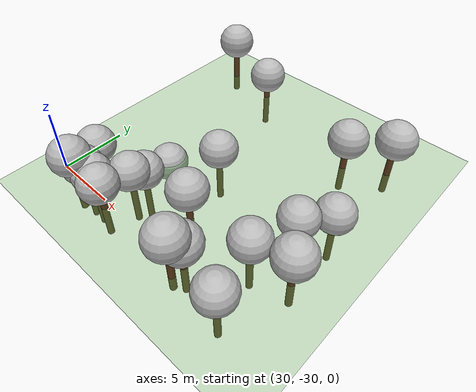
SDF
<sdf version="1.7">
 <world name="default">
  <model name="tree_simple473">
   <static>1</static>
   <link name="link">
    <pose>0 0 0.1 0 -0 0</pose>
    <collision name="collision_trunk">
     <pose>0 0 2 0 -0 0</pose>
     <geometry><cylinder><radius>0.25</radius><length>4</length></cylinder></geometry>
    </collision>
    <collision name="collision_treetop">
     <pose>0 0 5.2 0 -0 0</pose>
     <geometry><sphere><radius>1.5</radius></sphere></geometry>
    </collision>
    <visual name="trunk">
     <pose>0 0 2 0 -0 0</pose>
     <geometry><cylinder><radius>0.25</radius><length>4</length></cylinder></geometry>
     <material>
      <script>
       <uri>model://tree_simple/scripts</uri>
       <uri>model://tree_simple/materials/textures</uri>
       <name>TreeSimple/Trunk</name>
      </script>
     </material>
    </visual>
    <visual name="treetop">
     <pose>0 0 5.2 0 -0 0</pose>
     <geometry><sphere><radius>1.5</radius></sphere></geometry>
     <material>
      <script>
       <uri>model://tree_simple/scripts</uri>
       <uri>model://tree_simple/materials/textures</uri>
       <name>TreeSimple/Treetop</name>
      </script>
     </material>
    </visual>
   </link>
   <pose>35.36 -12.4568 -3.05954 0 -0 0</pose>
  </model>
  <model name="tree_simple461">
   <static>1</static>
   <link name="link">
    <pose>0 0 0.1 0 -0 0</pose>
    <collision name="collision_trunk">
     <pose>0 0 2 0 -0 0</pose>
     <geometry><cylinder><radius>0.25</radius><length>4</length></cylinder></geometry>
    </collision>
    <collision name="collision_treetop">
     <pose>0 0 5.2 0 -0 0</pose>
     <geometry><sphere><radius>1.5</radius></sphere></geometry>
    </collision>
    <visual name="trunk">
     <pose>0 0 2 0 -0 0</pose>
     <geometry><cylinder><radius>0.25</radius><length>4</length></cylinder></geometry>
     <material>
      <script>
       <uri>model://tree_simple/scripts</uri>
       <uri>model://tree_simple/materials/textures</uri>
       <name>TreeSimple/Trunk</name>
      </script>
     </material>
    </visual>
    <visual name="treetop">
     <pose>0 0 5.2 0 -0 0</pose>
     <geometry><sphere><radius>1.5</radius></sphere></geometry>
     <material>
      <script>
       <uri>model://tree_simple/scripts</uri>
       <uri>model://tree_simple/materials/textures</uri>
       <name>TreeSimple/Treetop</name>
      </script>
     </material>
    </visual>
   </link>
   <pose>48.4584 -13.8276 -1.9506 0 -0 0</pose>
  </model>
  <model name="tree_simple400">
   <static>1</static>
   <link name="link">
    <pose>0 0 0.1 0 -0 0</pose>
    <collision name="collision_trunk">
     <pose>0 0 2 0 -0 0</pose>
     <geometry><cylinder><radius>0.25</radius><length>4</length></cylinder></geometry>
    </collision>
    <collision name="collision_treetop">
     <pose>0 0 5.2 0 -0 0</pose>
     <geometry><sphere><radius>1.5</radius></sphere></geometry>
    </collision>
    <visual name="trunk">
     <pose>0 0 2 0 -0 0</pose>
     <geometry><cylinder><radius>0.25</radius><length>4</length></cylinder></geometry>
     <material>
      <script>
       <uri>model://tree_simple/scripts</uri>
       <uri>model://tree_simple/materials/textures</uri>
       <name>TreeSimple/Trunk</name>
      </script>
     </material>
    </visual>
    <visual name="treetop">
     <pose>0 0 5.2 0 -0 0</pose>
     <geometry><sphere><radius>1.5</radius></sphere></geometry>
     <material>
      <script>
       <uri>model://tree_simple/scripts</uri>
       <uri>model://tree_simple/materials/textures</uri>
       <name>TreeSimple/Treetop</name>
      </script>
     </material>
    </visual>
   </link>
   <pose>43.2652 -29.8931 -2.82808 0 -0 0</pose>
  </model>
  <model name="tree_simple390">
   <static>1</static>
   <link name="link">
    <pose>0 0 0.1 0 -0 0</pose>
    <collision name="collision_trunk">
     <pose>0 0 2 0 -0 0</pose>
     <geometry><cylinder><radius>0.25</radius><length>4</length></cylinder></geometry>
    </collision>
    <collision name="collision_treetop">
     <pose>0 0 5.2 0 -0 0</pose>
     <geometry><sphere><radius>1.5</radius></sphere></geometry>
    </collision>
    <visual name="trunk">
     <pose>0 0 2 0 -0 0</pose>
     <geometry><cylinder><radius>0.25</radius><length>4</length></cylinder></geometry>
     <material>
      <script>
       <uri>model://tree_simple/scripts</uri>
       <uri>model://tree_simple/materials/textures</uri>
       <name>TreeSimple/Trunk</name>
      </script>
     </material>
    </visual>
    <visual name="treetop">
     <pose>0 0 5.2 0 -0 0</pose>
     <geometry><sphere><radius>1.5</radius></sphere></geometry>
     <material>
      <script>
       <uri>model://tree_simple/scripts</uri>
       <uri>model://tree_simple/materials/textures</uri>
       <name>TreeSimple/Treetop</name>
      </script>
     </material>
    </visual>
   </link>
   <pose>34.828 -23.7978 -5.93333 0 -0 0</pose>
  </model>
  <model name="tree_simple379">
   <static>1</static>
   <link name="link">
    <pose>0 0 0.1 0 -0 0</pose>
    <collision name="collision_trunk">
     <pose>0 0 2 0 -0 0</pose>
     <geometry><cylinder><radius>0.25</radius><length>4</length></cylinder></geometry>
    </collision>
    <collision name="collision_treetop">
     <pose>0 0 5.2 0 -0 0</pose>
     <geometry><sphere><radius>1.5</radius></sphere></geometry>
    </collision>
    <visual name="trunk">
     <pose>0 0 2 0 -0 0</pose>
     <geometry><cylinder><radius>0.25</radius><length>4</length></cylinder></geometry>
     <material>
      <script>
       <uri>model://tree_simple/scripts</uri>
       <uri>model://tree_simple/materials/textures</uri>
       <name>TreeSimple/Trunk</name>
      </script>
     </material>
    </visual>
    <visual name="treetop">
     <pose>0 0 5.2 0 -0 0</pose>
     <geometry><sphere><radius>1.5</radius></sphere></geometry>
     <material>
      <script>
       <uri>model://tree_simple/scripts</uri>
       <uri>model://tree_simple/materials/textures</uri>
       <name>TreeSimple/Treetop</name>
      </script>
     </material>
    </visual>
   </link>
   <pose>35.6338 -27.9469 -3.44442 0 -0 0</pose>
  </model>
  <model name="tree_simple374">
   <static>1</static>
   <link name="link">
    <pose>0 0 0.1 0 -0 0</pose>
    <collision name="collision_trunk">
     <pose>0 0 2 0 -0 0</pose>
     <geometry><cylinder><radius>0.25</radius><length>4</length></cylinder></geometry>
    </collision>
    <collision name="collision_treetop">
     <pose>0 0 5.2 0 -0 0</pose>
     <geometry><sphere><radius>1.5</radius></sphere></geometry>
    </collision>
    <visual name="trunk">
     <pose>0 0 2 0 -0 0</pose>
     <geometry><cylinder><radius>0.25</radius><length>4</length></cylinder></geometry>
     <material>
      <script>
       <uri>model://tree_simple/scripts</uri>
       <uri>model://tree_simple/materials/textures</uri>
       <name>TreeSimple/Trunk</name>
      </script>
     </material>
    </visual>
    <visual name="treetop">
     <pose>0 0 5.2 0 -0 0</pose>
     <geometry><sphere><radius>1.5</radius></sphere></geometry>
     <material>
      <script>
       <uri>model://tree_simple/scripts</uri>
       <uri>model://tree_simple/materials/textures</uri>
       <name>TreeSimple/Treetop</name>
      </script>
     </material>
    </visual>
   </link>
   <pose>45.588 -15.4743 -2.4826 0 -0 0</pose>
  </model>
  <model name="tree_simple361">
   <static>1</static>
   <link name="link">
    <pose>0 0 0.1 0 -0 0</pose>
    <collision name="collision_trunk">
     <pose>0 0 2 0 -0 0</pose>
     <geometry><cylinder><radius>0.25</radius><length>4</length></cylinder></geometry>
    </collision>
    <collision name="collision_treetop">
     <pose>0 0 5.2 0 -0 0</pose>
     <geometry><sphere><radius>1.5</radius></sphere></geometry>
    </collision>
    <visual name="trunk">
     <pose>0 0 2 0 -0 0</pose>
     <geometry><cylinder><radius>0.25</radius><length>4</length></cylinder></geometry>
     <material>
      <script>
       <uri>model://tree_simple/scripts</uri>
       <uri>model://tree_simple/materials/textures</uri>
       <name>TreeSimple/Trunk</name>
      </script>
     </material>
    </visual>
    <visual name="treetop">
     <pose>0 0 5.2 0 -0 0</pose>
     <geometry><sphere><radius>1.5</radius></sphere></geometry>
     <material>
      <script>
       <uri>model://tree_simple/scripts</uri>
       <uri>model://tree_simple/materials/textures</uri>
       <name>TreeSimple/Treetop</name>
      </script>
     </material>
    </visual>
   </link>
   <pose>35.5367 -26.7239 -4.31343 0 -0 0</pose>
  </model>
  <model name="tree_simple330">
   <static>1</static>
   <link name="link">
    <pose>0 0 0.1 0 -0 0</pose>
    <collision name="collision_trunk">
     <pose>0 0 2 0 -0 0</pose>
     <geometry><cylinder><radius>0.25</radius><length>4</length></cylinder></geometry>
    </collision>
    <collision name="collision_treetop">
     <pose>0 0 5.2 0 -0 0</pose>
     <geometry><sphere><radius>1.5</radius></sphere></geometry>
    </collision>
    <visual name="trunk">
     <pose>0 0 2 0 -0 0</pose>
     <geometry><cylinder><radius>0.25</radius><length>4</length></cylinder></geometry>
     <material>
      <script>
       <uri>model://tree_simple/scripts</uri>
       <uri>model://tree_simple/materials/textures</uri>
       <name>TreeSimple/Trunk</name>
      </script>
     </material>
    </visual>
    <visual name="treetop">
     <pose>0 0 5.2 0 -0 0</pose>
     <geometry><sphere><radius>1.5</radius></sphere></geometry>
     <material>
      <script>
       <uri>model://tree_simple/scripts</uri>
       <uri>model://tree_simple/materials/textures</uri>
       <name>TreeSimple/Treetop</name>
      </script>
     </material>
    </visual>
   </link>
   <pose>46.6177 -30.3535 -3.81482 0 -0 0</pose>
  </model>
  <model name="tree_simple298">
   <static>1</static>
   <link name="link">
    <pose>0 0 0.1 0 -0 0</pose>
    <collision name="collision_trunk">
     <pose>0 0 2 0 -0 0</pose>
     <geometry><cylinder><radius>0.25</radius><length>4</length></cylinder></geometry>
    </collision>
    <collision name="collision_treetop">
     <pose>0 0 5.2 0 -0 0</pose>
     <geometry><sphere><radius>1.5</radius></sphere></geometry>
    </collision>
    <visual name="trunk">
     <pose>0 0 2 0 -0 0</pose>
     <geometry><cylinder><radius>0.25</radius><length>4</length></cylinder></geometry>
     <material>
      <script>
       <uri>model://tree_simple/scripts</uri>
       <uri>model://tree_simple/materials/textures</uri>
       <name>TreeSimple/Trunk</name>
      </script>
     </material>
    </visual>
    <visual name="treetop">
     <pose>0 0 5.2 0 -0 0</pose>
     <geometry><sphere><radius>1.5</radius></sphere></geometry>
     <material>
      <script>
       <uri>model://tree_simple/scripts</uri>
       <uri>model://tree_simple/materials/textures</uri>
       <name>TreeSimple/Treetop</name>
      </script>
     </material>
    </visual>
   </link>
   <pose>33.2902 -30.1268 -2.84391 0 -0 0</pose>
  </model>
  <model name="tree_simple278">
   <static>1</static>
   <link name="link">
    <pose>0 0 0.1 0 -0 0</pose>
    <collision name="collision_trunk">
     <pose>0 0 2 0 -0 0</pose>
     <geometry><cylinder><radius>0.25</radius><length>4</length></cylinder></geometry>
    </collision>
    <collision name="collision_treetop">
     <pose>0 0 5.2 0 -0 0</pose>
     <geometry><sphere><radius>1.5</radius></sphere></geometry>
    </collision>
    <visual name="trunk">
     <pose>0 0 2 0 -0 0</pose>
     <geometry><cylinder><radius>0.25</radius><length>4</length></cylinder></geometry>
     <material>
      <script>
       <uri>model://tree_simple/scripts</uri>
       <uri>model://tree_simple/materials/textures</uri>
       <name>TreeSimple/Trunk</name>
      </script>
     </material>
    </visual>
    <visual name="treetop">
     <pose>0 0 5.2 0 -0 0</pose>
     <geometry><sphere><radius>1.5</radius></sphere></geometry>
     <material>
      <script>
       <uri>model://tree_simple/scripts</uri>
       <uri>model://tree_simple/materials/textures</uri>
       <name>TreeSimple/Treetop</name>
      </script>
     </material>
    </visual>
   </link>
   <pose>38.4116 -21.7405 -3.76633 0 -0 0</pose>
  </model>
  <model name="tree_simple263">
   <static>1</static>
   <link name="link">
    <pose>0 0 0.1 0 -0 0</pose>
    <collision name="collision_trunk">
     <pose>0 0 2 0 -0 0</pose>
     <geometry><cylinder><radius>0.25</radius><length>4</length></cylinder></geometry>
    </collision>
    <collision name="collision_treetop">
     <pose>0 0 5.2 0 -0 0</pose>
     <geometry><sphere><radius>1.5</radius></sphere></geometry>
    </collision>
    <visual name="trunk">
     <pose>0 0 2 0 -0 0</pose>
     <geometry><cylinder><radius>0.25</radius><length>4</length></cylinder></geometry>
     <material>
      <script>
       <uri>model://tree_simple/scripts</uri>
       <uri>model://tree_simple/materials/textures</uri>
       <name>TreeSimple/Trunk</name>
      </script>
     </material>
    </visual>
    <visual name="treetop">
     <pose>0 0 5.2 0 -0 0</pose>
     <geometry><sphere><radius>1.5</radius></sphere></geometry>
     <material>
      <script>
       <uri>model://tree_simple/scripts</uri>
       <uri>model://tree_simple/materials/textures</uri>
       <name>TreeSimple/Treetop</name>
      </script>
     </material>
    </visual>
   </link>
   <pose>40.6295 -26.8946 -2.48298 0 -0 0</pose>
  </model>
  <model name="tree_simple243">
   <static>1</static>
   <link name="link">
    <pose>0 0 0.1 0 -0 0</pose>
    <collision name="collision_trunk">
     <pose>0 0 2 0 -0 0</pose>
     <geometry><cylinder><radius>0.25</radius><length>4</length></cylinder></geometry>
    </collision>
    <collision name="collision_treetop">
     <pose>0 0 5.2 0 -0 0</pose>
     <geometry><sphere><radius>1.5</radius></sphere></geometry>
    </collision>
    <visual name="trunk">
     <pose>0 0 2 0 -0 0</pose>
     <geometry><cylinder><radius>0.25</radius><length>4</length></cylinder></geometry>
     <material>
      <script>
       <uri>model://tree_simple/scripts</uri>
       <uri>model://tree_simple/materials/textures</uri>
       <name>TreeSimple/Trunk</name>
      </script>
     </material>
    </visual>
    <visual name="treetop">
     <pose>0 0 5.2 0 -0 0</pose>
     <geometry><sphere><radius>1.5</radius></sphere></geometry>
     <material>
      <script>
       <uri>model://tree_simple/scripts</uri>
       <uri>model://tree_simple/materials/textures</uri>
       <name>TreeSimple/Treetop</name>
      </script>
     </material>
    </visual>
   </link>
   <pose>48.9656 -26.1872 -2.52503 0 -0 0</pose>
  </model>
  <model name="tree_simple206">
   <static>1</static>
   <link name="link">
    <pose>0 0 0.1 0 -0 0</pose>
    <collision name="collision_trunk">
     <pose>0 0 2 0 -0 0</pose>
     <geometry><cylinder><radius>0.25</radius><length>4</length></cylinder></geometry>
    </collision>
    <collision name="collision_treetop">
     <pose>0 0 5.2 0 -0 0</pose>
     <geometry><sphere><radius>1.5</radius></sphere></geometry>
    </collision>
    <visual name="trunk">
     <pose>0 0 2 0 -0 0</pose>
     <geometry><cylinder><radius>0.25</radius><length>4</length></cylinder></geometry>
     <material>
      <script>
       <uri>model://tree_simple/scripts</uri>
       <uri>model://tree_simple/materials/textures</uri>
       <name>TreeSimple/Trunk</name>
      </script>
     </material>
    </visual>
    <visual name="treetop">
     <pose>0 0 5.2 0 -0 0</pose>
     <geometry><sphere><radius>1.5</radius></sphere></geometry>
     <material>
      <script>
       <uri>model://tree_simple/scripts</uri>
       <uri>model://tree_simple/materials/textures</uri>
       <name>TreeSimple/Treetop</name>
      </script>
     </material>
    </visual>
   </link>
   <pose>46.8541 -22.8682 -3.78557 0 -0 0</pose>
  </model>
  <model name="tree_simple185">
   <static>1</static>
   <link name="link">
    <pose>0 0 0.1 0 -0 0</pose>
    <collision name="collision_trunk">
     <pose>0 0 2 0 -0 0</pose>
     <geometry><cylinder><radius>0.25</radius><length>4</length></cylinder></geometry>
    </collision>
    <collision name="collision_treetop">
     <pose>0 0 5.2 0 -0 0</pose>
     <geometry><sphere><radius>1.5</radius></sphere></geometry>
    </collision>
    <visual name="trunk">
     <pose>0 0 2 0 -0 0</pose>
     <geometry><cylinder><radius>0.25</radius><length>4</length></cylinder></geometry>
     <material>
      <script>
       <uri>model://tree_simple/scripts</uri>
       <uri>model://tree_simple/materials/textures</uri>
       <name>TreeSimple/Trunk</name>
      </script>
     </material>
    </visual>
    <visual name="treetop">
     <pose>0 0 5.2 0 -0 0</pose>
     <geometry><sphere><radius>1.5</radius></sphere></geometry>
     <material>
      <script>
       <uri>model://tree_simple/scripts</uri>
       <uri>model://tree_simple/materials/textures</uri>
       <name>TreeSimple/Treetop</name>
      </script>
     </material>
    </visual>
   </link>
   <pose>48.1272 -20.3232 -4.57911 0 -0 0</pose>
  </model>
  <model name="tree_simple179">
   <static>1</static>
   <link name="link">
    <pose>0 0 0.1 0 -0 0</pose>
    <collision name="collision_trunk">
     <pose>0 0 2 0 -0 0</pose>
     <geometry><cylinder><radius>0.25</radius><length>4</length></cylinder></geometry>
    </collision>
    <collision name="collision_treetop">
     <pose>0 0 5.2 0 -0 0</pose>
     <geometry><sphere><radius>1.5</radius></sphere></geometry>
    </collision>
    <visual name="trunk">
     <pose>0 0 2 0 -0 0</pose>
     <geometry><cylinder><radius>0.25</radius><length>4</length></cylinder></geometry>
     <material>
      <script>
       <uri>model://tree_simple/scripts</uri>
       <uri>model://tree_simple/materials/textures</uri>
       <name>TreeSimple/Trunk</name>
      </script>
     </material>
    </visual>
    <visual name="treetop">
     <pose>0 0 5.2 0 -0 0</pose>
     <geometry><sphere><radius>1.5</radius></sphere></geometry>
     <material>
      <script>
       <uri>model://tree_simple/scripts</uri>
       <uri>model://tree_simple/materials/textures</uri>
       <name>TreeSimple/Treetop</name>
      </script>
     </material>
    </visual>
   </link>
   <pose>33.0376 -30.7286 -1.71832 0 -0 0</pose>
  </model>
  <model name="tree_simple133">
   <static>1</static>
   <link name="link">
    <pose>0 0 0.1 0 -0 0</pose>
    <collision name="collision_trunk">
     <pose>0 0 2 0 -0 0</pose>
     <geometry><cylinder><radius>0.25</radius><length>4</length></cylinder></geometry>
    </collision>
    <collision name="collision_treetop">
     <pose>0 0 5.2 0 -0 0</pose>
     <geometry><sphere><radius>1.5</radius></sphere></geometry>
    </collision>
    <visual name="trunk">
     <pose>0 0 2 0 -0 0</pose>
     <geometry><cylinder><radius>0.25</radius><length>4</length></cylinder></geometry>
     <material>
      <script>
       <uri>model://tree_simple/scripts</uri>
       <uri>model://tree_simple/materials/textures</uri>
       <name>TreeSimple/Trunk</name>
      </script>
     </material>
    </visual>
    <visual name="treetop">
     <pose>0 0 5.2 0 -0 0</pose>
     <geometry><sphere><radius>1.5</radius></sphere></geometry>
     <material>
      <script>
       <uri>model://tree_simple/scripts</uri>
       <uri>model://tree_simple/materials/textures</uri>
       <name>TreeSimple/Treetop</name>
      </script>
     </material>
    </visual>
   </link>
   <pose>34.1792 -30.0611 -3.05109 0 -0 0</pose>
  </model>
  <model name="tree_simple128">
   <static>1</static>
   <link name="link">
    <pose>0 0 0.1 0 -0 0</pose>
    <collision name="collision_trunk">
     <pose>0 0 2 0 -0 0</pose>
     <geometry><cylinder><radius>0.25</radius><length>4</length></cylinder></geometry>
    </collision>
    <collision name="collision_treetop">
     <pose>0 0 5.2 0 -0 0</pose>
     <geometry><sphere><radius>1.5</radius></sphere></geometry>
    </collision>
    <visual name="trunk">
     <pose>0 0 2 0 -0 0</pose>
     <geometry><cylinder><radius>0.25</radius><length>4</length></cylinder></geometry>
     <material>
      <script>
       <uri>model://tree_simple/scripts</uri>
       <uri>model://tree_simple/materials/textures</uri>
       <name>TreeSimple/Trunk</name>
      </script>
     </material>
    </visual>
    <visual name="treetop">
     <pose>0 0 5.2 0 -0 0</pose>
     <geometry><sphere><radius>1.5</radius></sphere></geometry>
     <material>
      <script>
       <uri>model://tree_simple/scripts</uri>
       <uri>model://tree_simple/materials/textures</uri>
       <name>TreeSimple/Treetop</name>
      </script>
     </material>
    </visual>
   </link>
   <pose>45.9202 -26.5855 -3.35013 0 -0 0</pose>
  </model>
  <model name="tree_simple63">
   <static>1</static>
   <link name="link">
    <pose>0 0 0.1 0 -0 0</pose>
    <collision name="collision_trunk">
     <pose>0 0 2 0 -0 0</pose>
     <geometry><cylinder><radius>0.25</radius><length>4</length></cylinder></geometry>
    </collision>
    <collision name="collision_treetop">
     <pose>0 0 5.2 0 -0 0</pose>
     <geometry><sphere><radius>1.5</radius></sphere></geometry>
    </collision>
    <visual name="trunk">
     <pose>0 0 2 0 -0 0</pose>
     <geometry><cylinder><radius>0.25</radius><length>4</length></cylinder></geometry>
     <material>
      <script>
       <uri>model://tree_simple/scripts</uri>
       <uri>model://tree_simple/materials/textures</uri>
       <name>TreeSimple/Trunk</name>
      </script>
     </material>
    </visual>
    <visual name="treetop">
     <pose>0 0 5.2 0 -0 0</pose>
     <geometry><sphere><radius>1.5</radius></sphere></geometry>
     <material>
      <script>
       <uri>model://tree_simple/scripts</uri>
       <uri>model://tree_simple/materials/textures</uri>
       <name>TreeSimple/Treetop</name>
      </script>
     </material>
    </visual>
   </link>
   <pose>31.0402 -11.8389 -1.6087 0 -0 0</pose>
  </model>
  <model name="tree_simple57">
   <static>1</static>
   <link name="link">
    <pose>0 0 0.1 0 -0 0</pose>
    <collision name="collision_trunk">
     <pose>0 0 2 0 -0 0</pose>
     <geometry><cylinder><radius>0.25</radius><length>4</length></cylinder></geometry>
    </collision>
    <collision name="collision_treetop">
     <pose>0 0 5.2 0 -0 0</pose>
     <geometry><sphere><radius>1.5</radius></sphere></geometry>
    </collision>
    <visual name="trunk">
     <pose>0 0 2 0 -0 0</pose>
     <geometry><cylinder><radius>0.25</radius><length>4</length></cylinder></geometry>
     <material>
      <script>
       <uri>model://tree_simple/scripts</uri>
       <uri>model://tree_simple/materials/textures</uri>
       <name>TreeSimple/Trunk</name>
      </script>
     </material>
    </visual>
    <visual name="treetop">
     <pose>0 0 5.2 0 -0 0</pose>
     <geometry><sphere><radius>1.5</radius></sphere></geometry>
     <material>
      <script>
       <uri>model://tree_simple/scripts</uri>
       <uri>model://tree_simple/materials/textures</uri>
       <name>TreeSimple/Treetop</name>
      </script>
     </material>
    </visual>
   </link>
   <pose>43.2092 -30.8439 -1.43787 0 -0 0</pose>
  </model>
  <model name="tree_simple9">
   <static>1</static>
   <link name="link">
    <pose>0 0 0.1 0 -0 0</pose>
    <collision name="collision_trunk">
     <pose>0 0 2 0 -0 0</pose>
     <geometry><cylinder><radius>0.25</radius><length>4</length></cylinder></geometry>
    </collision>
    <collision name="collision_treetop">
     <pose>0 0 5.2 0 -0 0</pose>
     <geometry><sphere><radius>1.5</radius></sphere></geometry>
    </collision>
    <visual name="trunk">
     <pose>0 0 2 0 -0 0</pose>
     <geometry><cylinder><radius>0.25</radius><length>4</length></cylinder></geometry>
     <material>
      <script>
       <uri>model://tree_simple/scripts</uri>
       <uri>model://tree_simple/materials/textures</uri>
       <name>TreeSimple/Trunk</name>
      </script>
     </material>
    </visual>
    <visual name="treetop">
     <pose>0 0 5.2 0 -0 0</pose>
     <geometry><sphere><radius>1.5</radius></sphere></geometry>
     <material>
      <script>
       <uri>model://tree_simple/scripts</uri>
       <uri>model://tree_simple/materials/textures</uri>
       <name>TreeSimple/Treetop</name>
      </script>
     </material>
    </visual>
   </link>
   <pose>31.8662 -28.0908 -3.11315 0 -0 0</pose>
  </model>
  <model name="tree_simple1">
   <static>1</static>
   <link name="link">
    <pose>0 0 0.1 0 -0 0</pose>
    <collision name="collision_trunk">
     <pose>0 0 2 0 -0 0</pose>
     <geometry><cylinder><radius>0.25</radius><length>4</length></cylinder></geometry>
    </collision>
    <collision name="collision_treetop">
     <pose>0 0 5.2 0 -0 0</pose>
     <geometry><sphere><radius>1.5</radius></sphere></geometry>
    </collision>
    <visual name="trunk">
     <pose>0 0 2 0 -0 0</pose>
     <geometry><cylinder><radius>0.25</radius><length>4</length></cylinder></geometry>
     <material>
      <script>
       <uri>model://tree_simple/scripts</uri>
       <uri>model://tree_simple/materials/textures</uri>
       <name>TreeSimple/Trunk</name>
      </script>
     </material>
    </visual>
    <visual name="treetop">
     <pose>0 0 5.2 0 -0 0</pose>
     <geometry><sphere><radius>1.5</radius></sphere></geometry>
     <material>
      <script>
       <uri>model://tree_simple/scripts</uri>
       <uri>model://tree_simple/materials/textures</uri>
       <name>TreeSimple/Treetop</name>
      </script>
     </material>
    </visual>
   </link>
   <pose>35.5273 -30.4171 -2.92183 0 -0 0</pose>
  </model>
  <model name="ground_plane">
   <static>1</static>
   <link name="link">
    <collision name="collision">
     <geometry><plane><normal>0 0 1</normal><size>250 250</size></plane></geometry>
     <surface><friction><ode><mu>1</mu><mu2>1</mu2></ode></friction></surface>
    </collision>
    <visual name="grass">
     <cast_shadows>0</cast_shadows>
     <geometry><plane><normal>0 0 1</normal><size>150 250</size></plane></geometry>
     <material>
      <script><uri>file://media/materials/scripts/Gazebo.material</uri><name>Gazebo/Grass</name></script>
     </material>
    </visual>
   </link>
  </model>
 </world>
</sdf>
